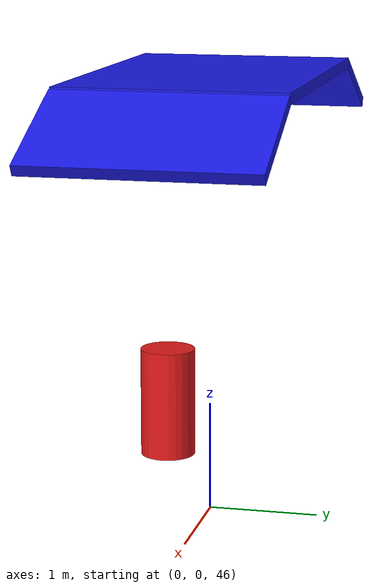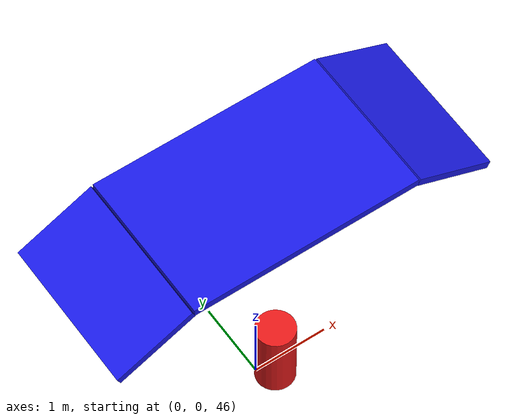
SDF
<?xml version="1.0" ?>
<sdf version="1.6">
  <world name="paraglider_world">
    <!-- System plugins remain unchanged -->
    <plugin filename="gz-sim-physics-system" name="gz::sim::systems::Physics">
    </plugin>
    <plugin filename="gz-sim-user-commands-system" name="gz::sim::systems::UserCommands">
    </plugin>
    <plugin filename="gz-sim-scene-broadcaster-system" name="gz::sim::systems::SceneBroadcaster">
    </plugin>

    <physics name="1ms" type="ode">
      <max_step_size>0.001</max_step_size>
      <real_time_factor>1.0</real_time_factor>
      <real_time_update_rate>1000</real_time_update_rate>
    </physics>

    <!-- Light and ground plane unchanged -->
    <light type="directional" name="sun">
      <cast_shadows>true</cast_shadows>
      <pose>0 0 10 0 0 0</pose>
      <diffuse>0.8 0.8 0.8 1</diffuse>
      <specular>0.2 0.2 0.2 1</specular>
      <attenuation>
        <range>1000</range>
        <constant>0.9</constant>
        <linear>0.01</linear>
        <quadratic>0.001</quadratic>
      </attenuation>
      <direction>-0.5 0.1 -0.9</direction>
    </light>

    <model name="ground_plane">
      <static>true</static>
      <link name="link">
        <collision name="collision">
          <geometry>
            <plane>
              <normal>0 0 1</normal>
              <size>100 100</size>
            </plane>
          </geometry>
        </collision>
        <visual name="visual">
          <geometry>
            <plane>
              <normal>0 0 1</normal>
              <size>100 100</size>
            </plane>
          </geometry>
          <material>
            <ambient>0.8 0.8 0.8 1</ambient>
            <diffuse>0.8 0.8 0.8 1</diffuse>
            <specular>0.8 0.8 0.8 1</specular>
          </material>
        </visual>
      </link>
    </model>

    <model name="paraglider">
      <enable_wind>true</enable_wind>
      <static>false</static>
      <pose>0 0 50 0 0 0</pose>
      <link name="wing">
        <inertial>
          <mass>4.0</mass>
          <inertia>
            <ixx>5.0</ixx>
            <iyy>5.0</iyy>
            <izz>5.0</izz>
            <ixy>0</ixy>
            <ixz>0</ixz>
            <iyz>0</iyz>
          </inertia>
          <!-- Adjusted center of mass -->
          <pose>0 0 0 0 0 0</pose>
        </inertial>
        <visual name="wing_visual_center">
          <pose>0 0 0 0 0 0</pose>
          <geometry>
            <box>
              <size>3.0 2.0 0.1</size>
            </box>
          </geometry>
          <material>
            <ambient>0.1 0.1 0.9 1</ambient>
            <diffuse>0.1 0.1 0.9 1</diffuse>
            <specular>0.1 0.1 0.5 1</specular>
          </material>
        </visual>
        <visual name="wing_visual_left">
          <pose>2 0 -0.25 0 0.45 0</pose>
          <geometry>
            <box>
              <size>1.1 2.0 0.1</size>
            </box>
          </geometry>
          <material>
            <ambient>0.1 0.1 0.9 1</ambient>
            <diffuse>0.1 0.1 0.9 1</diffuse>
            <specular>0.1 0.1 0.5 1</specular>
          </material>
        </visual>
        <visual name="wing_visual_right">
          <pose>-2 0 -0.25 0 -0.45 0</pose>
          <geometry>
            <box>
              <size>1.1 2.0 0.1</size>
            </box>
          </geometry>
          <material>
            <ambient>0.1 0.1 0.9 1</ambient>
            <diffuse>0.1 0.1 0.9 1</diffuse>
            <specular>0.1 0.1 0.5 1</specular>
          </material>
        </visual>
        <collision name="wing_collision_center">
          <pose>0 0 0 0 0 0</pose>
          <geometry>
            <box>
              <size>3.0 2.0 0.1</size>
            </box>
          </geometry>
        </collision>
        <collision name="wing_collision_left">
          <pose>2 0 -0.25 0 0.45 0</pose>
          <geometry>
            <box>
              <size>1.1 2.0 0.1</size>
            </box>
          </geometry>
        </collision>
        <collision name="wing_collision_right">
          <pose>-2 0 -0.25 0 -0.45 0</pose>
          <geometry>
            <box>
              <size>1.1 2.0 0.1</size>
            </box>
          </geometry>
        </collision>
        <enable_wind>true</enable_wind>
      </link>

      <!-- Restored the pilot link to add weight below the wing for stability -->
      <link name="pilot">
        <pose>0 -0.4 -3 0 0 0</pose>
        <inertial>
          <mass>65</mass>
          <inertia>
            <ixx>3</ixx>
            <iyy>3</iyy>
            <izz>3</izz>
            <ixy>0</ixy>
            <ixz>0</ixz>
            <iyz>0</iyz>
          </inertia>
        </inertial>
        <visual name="pilot_visual">
          <geometry>
            <cylinder>
              <radius>0.25</radius>
              <length>1</length>
            </cylinder>
          </geometry>
          <material>
            <ambient>0.9 0.1 0.1 1</ambient>
            <diffuse>0.9 0.1 0.1 1</diffuse>
            <specular>0.1 0.1 0.1 1</specular>
          </material>
        </visual>
        <collision name="pilot_collision">
          <geometry>
            <cylinder>
              <radius>0.25</radius>
              <length>1</length>
            </cylinder>
          </geometry>
        </collision>
        <enable_wind>true</enable_wind>
      </link>

      <!-- Restored the joint connecting wing to pilot -->
      <joint name="wing_to_pilot" type="fixed">
        <parent>wing</parent>
        <child>pilot</child>
      </joint>

      <plugin filename="gz-sim-lift-drag-system" name="gz::sim::systems::LiftDrag">
        <a0>-0.07</a0>              <!-- Slightly negative zero-lift angle -->
        <cla>2.5</cla>              <!-- Softer lift slope typical for paragliders -->
        <cda>0.12</cda>             <!-- More draggy fabric wing -->
        <cma>-0.12</cma>            <!-- Mildly stable pitch moment -->
        <cp>0.0 0.0 0.0</cp>        <!-- Center of pressure at center of the wing -->
        <area>22.0</area>           <!-- Wing surface area in m² -->
        <air_density>1.2041</air_density>  <!-- Standard air density at sea level -->
        <forward>0 1 0</forward>    <!-- Y-axis is forward (chord direction) -->
        <upward>0 0 1</upward>      <!-- Z-axis is upward (lift direction) -->
        <link_name>wing</link_name>
      </plugin>

      <plugin filename="gz-sim-joint-state-publisher-system" name="gz::sim::systems::JointStatePublisher">
      </plugin>
    </model>

    <wind>
      <!-- Wind disabled as requested -->
      <linear_velocity>0 0 0</linear_velocity>
    </wind>

    <!-- Wind effects plugin disabled as requested -->

  </world>
</sdf>
